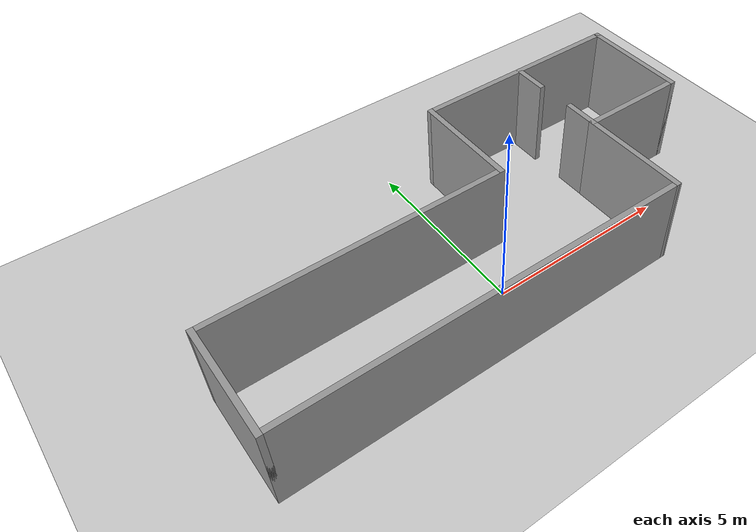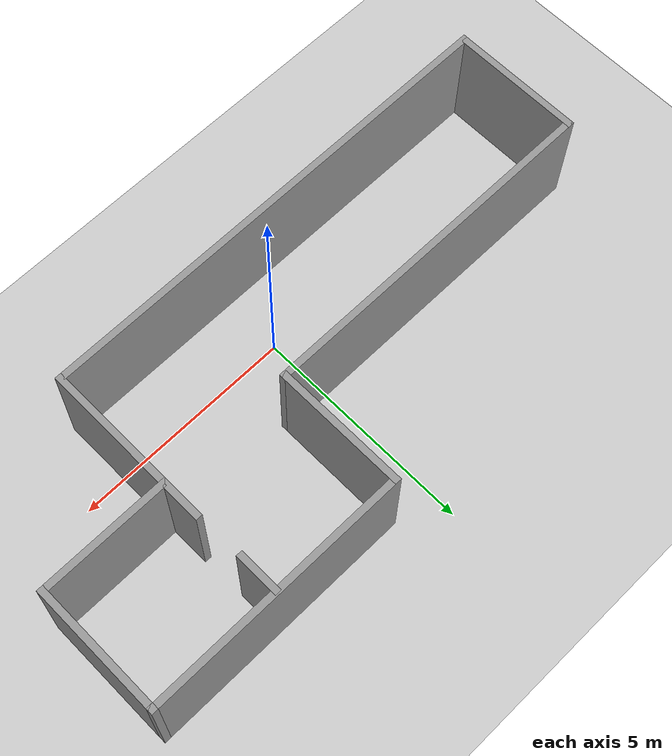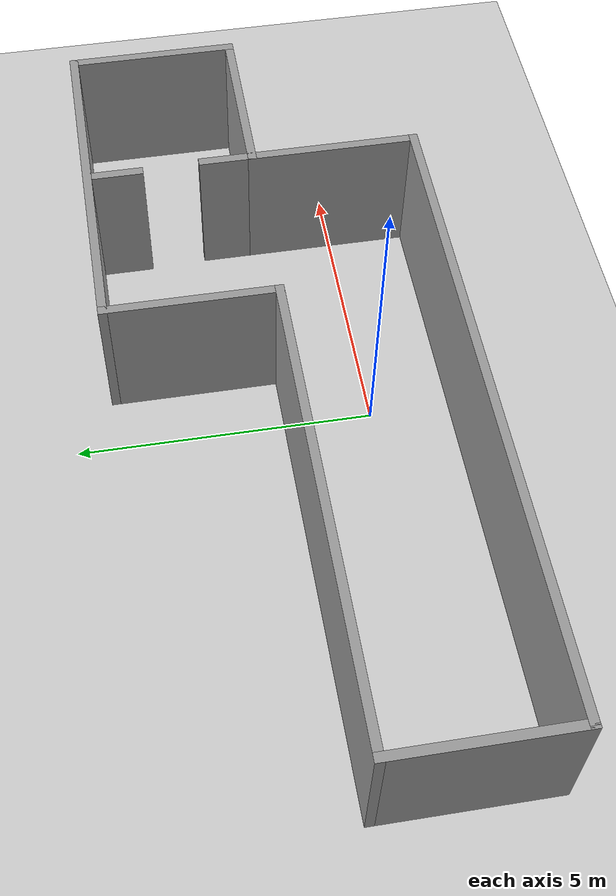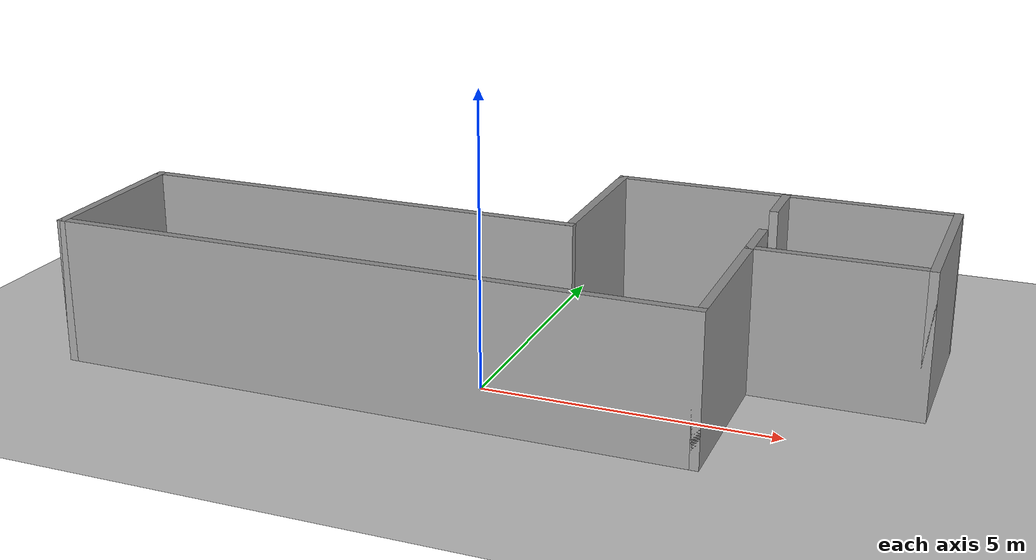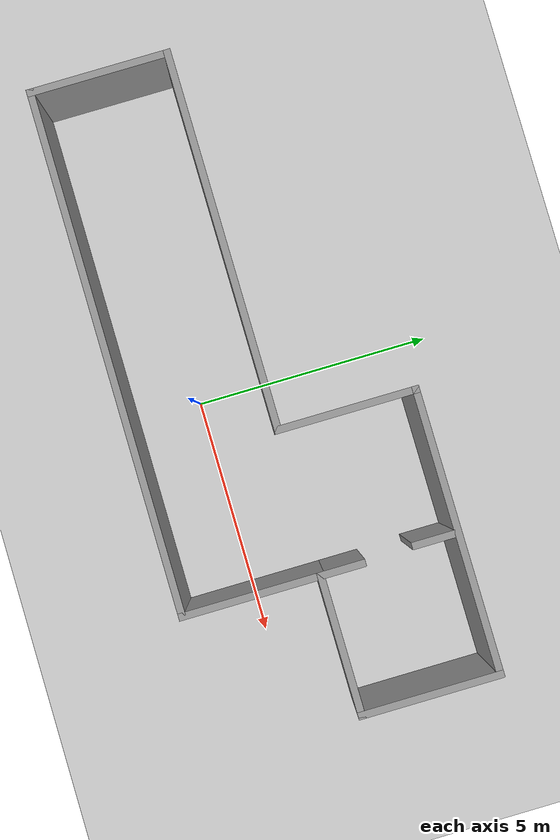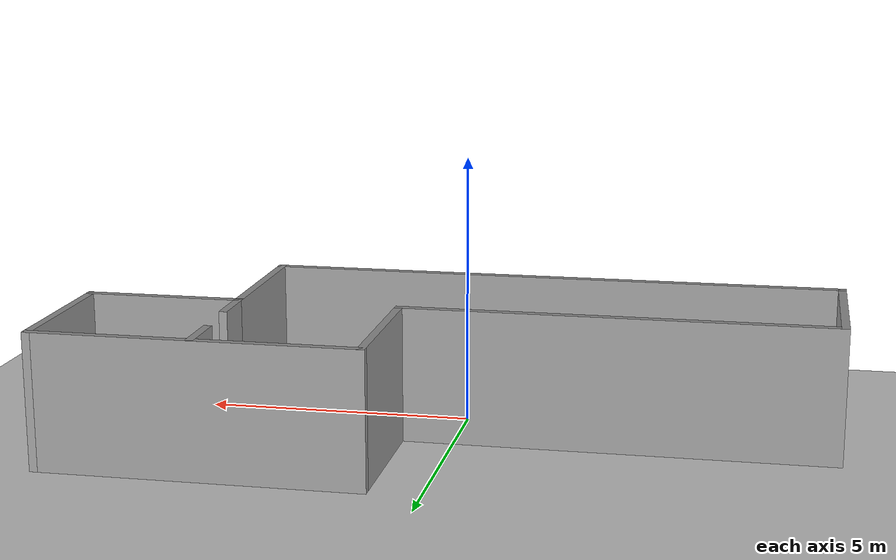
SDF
<sdf version="1.6">
 <world name="default">
  <light name="sun" type="directional">
   <pose>0 0 10 0 -0 0</pose>
   <diffuse>0.8 0.8 0.8 1</diffuse>
   <specular>0.1 0.1 0.1 1</specular>
   <attenuation>
    <range>1000</range>
    <constant>0.9</constant>
    <linear>0.01</linear>
    <quadratic>0.001</quadratic>
   </attenuation>
   <direction>-0.5 0.5 -1</direction>
  </light>
  <model name="ground_plane">
   <static>1</static>
   <link name="link">
    <collision name="collision">
     <geometry><plane><normal>0 0 1</normal><size>100 100</size></plane></geometry>
     <surface><friction><ode><mu>100</mu><mu2>50</mu2></ode></friction></surface>
    </collision>
    <visual name="visual">
     <cast_shadows>0</cast_shadows>
     <geometry><plane><normal>0 0 1</normal><size>100 100</size></plane></geometry>
     <material>
      <script><uri>file://media/materials/scripts/gazebo.material</uri><name>Gazebo/Grey</name></script>
     </material>
    </visual>
   </link>
  </model>
  <gravity>0 0 -9.8</gravity>
  <magnetic_field>6e-06 2.3e-05 -4.2e-05</magnetic_field>
  <atmosphere type="adiabatic"/>
  <physics name="default_physics" default="0" type="ode">
   <max_step_size>0.001</max_step_size>
   <real_time_factor>1</real_time_factor>
   <real_time_update_rate>1000</real_time_update_rate>
  </physics>
  <scene><ambient>0.4 0.4 0.4 1</ambient><background>0.7 0.7 0.7 1</background><shadows>1</shadows></scene>
  <spherical_coordinates>
   <surface_model>EARTH_WGS84</surface_model>
   <latitude_deg>0</latitude_deg>
   <longitude_deg>0</longitude_deg>
   <elevation>0</elevation>
   <heading_deg>0</heading_deg>
  </spherical_coordinates>
  <model name="corridor-zigzag-door">
   <pose>0 1.42 0 0 -0 0</pose>
   <link name="Wall_10">
    <collision name="Wall_10_Collision">
     <geometry><box><size>3 0.15 2.5</size></box></geometry>
     <pose>0 0 1.25 0 -0 0</pose>
    </collision>
    <visual name="Wall_10_Visual">
     <pose>0 0 1.25 0 -0 0</pose>
     <geometry><box><size>3 0.15 2.5</size></box></geometry>
     <material>
      <script><uri>file://media/materials/scripts/gazebo.material</uri><name>Gazebo/Grey</name></script>
      <ambient>0.972549 0.980392 1 1</ambient>
     </material>
     <meta><layer>0</layer></meta>
    </visual>
    <pose>-6.85 -1.425 0 0 0 -1.5708</pose>
   </link>
   <link name="Wall_12">
    <collision name="Wall_12_Collision">
     <geometry><box><size>6 0.15 2.5</size></box></geometry>
     <pose>0 0 1.25 0 -0 0</pose>
    </collision>
    <visual name="Wall_12_Visual">
     <pose>0 0 1.25 0 -0 0</pose>
     <geometry><box><size>6 0.15 2.5</size></box></geometry>
     <material>
      <script><uri>file://media/materials/scripts/gazebo.material</uri><name>Gazebo/Grey</name></script>
      <ambient>0.972549 0.980392 1 1</ambient>
     </material>
     <meta><layer>0</layer></meta>
    </visual>
    <pose>3.925 2.85 0 0 -0 3.14159</pose>
   </link>
   <link name="Wall_13">
    <collision name="Wall_13_Collision">
     <geometry><box><size>3 0.15 2.5</size></box></geometry>
     <pose>0 0 1.25 0 -0 0</pose>
    </collision>
    <visual name="Wall_13_Visual">
     <pose>0 0 1.25 0 -0 0</pose>
     <geometry><box><size>3 0.15 2.5</size></box></geometry>
     <material>
      <script><uri>file://media/materials/scripts/gazebo.material</uri><name>Gazebo/Grey</name></script>
      <ambient>0.972549 0.980392 1 1</ambient>
     </material>
     <meta><layer>0</layer></meta>
    </visual>
    <pose>1 1.425 0 0 0 -1.5708</pose>
   </link>
   <link name="Wall_15">
    <collision name="Wall_15_Collision">
     <geometry><box><size>1 0.15 2.5</size></box></geometry>
     <pose>0 0 1.25 0 -0 0</pose>
    </collision>
    <visual name="Wall_15_Visual">
     <pose>0 0 1.25 0 -0 0</pose>
     <geometry><box><size>1 0.15 2.5</size></box></geometry>
     <material>
      <script><uri>file://media/materials/scripts/gazebo.material</uri><name>Gazebo/Grey</name></script>
      <ambient>1 1 1 1</ambient>
     </material>
     <meta><layer>0</layer></meta>
    </visual>
    <pose>3.94968 2.39084 0 0 0 -1.5708</pose>
   </link>
   <link name="Wall_17">
    <collision name="Wall_17_Collision">
     <geometry><box><size>1 0.15 2.5</size></box></geometry>
     <pose>0 0 1.25 0 -0 0</pose>
    </collision>
    <visual name="Wall_17_Visual">
     <pose>0 0 1.25 0 -0 0</pose>
     <geometry><box><size>1 0.15 2.5</size></box></geometry>
     <material>
      <script><uri>file://media/materials/scripts/gazebo.material</uri><name>Gazebo/Grey</name></script>
      <ambient>1 1 1 1</ambient>
     </material>
     <meta><layer>0</layer></meta>
    </visual>
    <pose>4 0.425 0 0 -0 1.5708</pose>
   </link>
   <link name="Wall_3">
    <collision name="Wall_3_Collision">
     <geometry><box><size>11 0.15 2.5</size></box></geometry>
     <pose>0 0 1.25 0 -0 0</pose>
    </collision>
    <visual name="Wall_3_Visual">
     <pose>0 0 1.25 0 -0 0</pose>
     <geometry><box><size>11 0.15 2.5</size></box></geometry>
     <material>
      <script><uri>file://media/materials/scripts/gazebo.material</uri><name>Gazebo/Grey</name></script>
      <ambient>0.972549 0.980392 1 1</ambient>
     </material>
     <meta><layer>0</layer></meta>
    </visual>
    <pose>-1.425 -2.85 0 0 -0 0</pose>
   </link>
   <link name="Wall_4">
    <collision name="Wall_4_Collision">
     <geometry><box><size>3 0.15 2.5</size></box></geometry>
     <pose>0 0 1.25 0 -0 0</pose>
    </collision>
    <visual name="Wall_4_Visual">
     <pose>0 0 1.25 0 -0 0</pose>
     <geometry><box><size>3 0.15 2.5</size></box></geometry>
     <material>
      <script><uri>file://media/materials/scripts/gazebo.material</uri><name>Gazebo/Grey</name></script>
      <ambient>0.972549 0.980392 1 1</ambient>
     </material>
     <meta><layer>0</layer></meta>
    </visual>
    <pose>4 -1.425 0 0 -0 1.5708</pose>
   </link>
   <link name="Wall_5">
    <collision name="Wall_5_Collision">
     <geometry><box><size>3 0.15 2.5</size></box></geometry>
     <pose>0 0 1.25 0 -0 0</pose>
    </collision>
    <visual name="Wall_5_Visual">
     <pose>0 0 1.25 0 -0 0</pose>
     <geometry><box><size>3 0.15 2.5</size></box></geometry>
     <material>
      <script><uri>file://media/materials/scripts/gazebo.material</uri><name>Gazebo/Grey</name></script>
      <ambient>0.972549 0.980392 1 1</ambient>
     </material>
     <meta><layer>0</layer></meta>
    </visual>
    <pose>5.425 0 0 0 -0 0</pose>
   </link>
   <link name="Wall_6">
    <collision name="Wall_6_Collision">
     <geometry><box><size>3 0.15 2.5</size></box></geometry>
     <pose>0 0 1.25 0 -0 0</pose>
    </collision>
    <visual name="Wall_6_Visual">
     <pose>0 0 1.25 0 -0 0</pose>
     <geometry><box><size>3 0.15 2.5</size></box></geometry>
     <material>
      <script><uri>file://media/materials/scripts/gazebo.material</uri><name>Gazebo/Grey</name></script>
      <ambient>0.972549 0.980392 1 1</ambient>
     </material>
     <meta><layer>0</layer></meta>
    </visual>
    <pose>6.85 1.425 0 0 -0 1.5708</pose>
   </link>
   <link name="Wall_9">
    <collision name="Wall_9_Collision">
     <geometry><box><size>8 0.15 2.5</size></box></geometry>
     <pose>0 0 1.25 0 -0 0</pose>
    </collision>
    <visual name="Wall_9_Visual">
     <pose>0 0 1.25 0 -0 0</pose>
     <geometry><box><size>8 0.15 2.5</size></box></geometry>
     <material>
      <script><uri>file://media/materials/scripts/gazebo.material</uri><name>Gazebo/Grey</name></script>
      <ambient>0.972549 0.980392 1 1</ambient>
     </material>
     <meta><layer>0</layer></meta>
    </visual>
    <pose>-2.925 0 0 0 -0 3.14159</pose>
   </link>
   <static>1</static>
  </model>
 </world>
</sdf>
